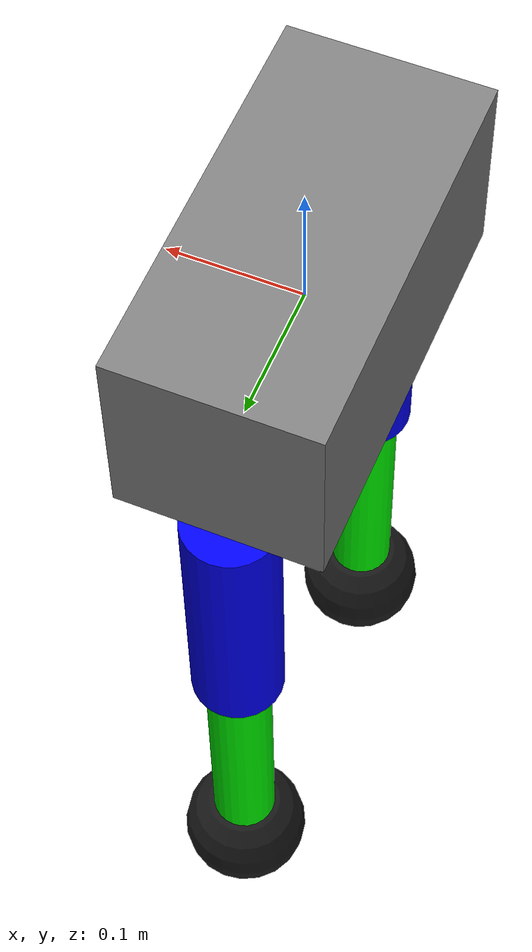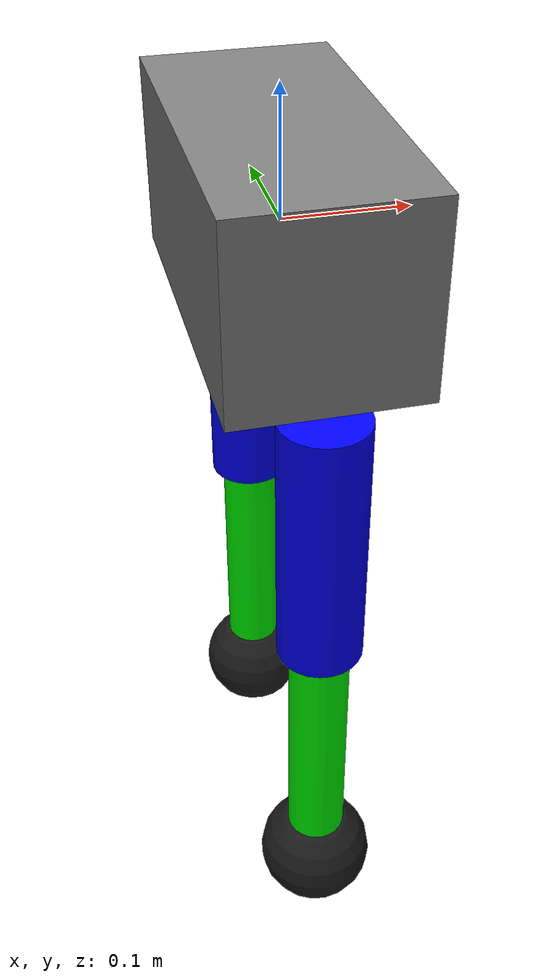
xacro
<?xml version="1.0"?>
<robot xmlns:xacro="http://www.ros.org/wiki/xacro" name="biped">

  <!-- Torso Link -->
  <link name="torso_link">
    <visual>
      <geometry>
        <box size="0.15 0.3 0.15"/>
      </geometry>
      <material name="grey">
        <color rgba="0.5 0.5 0.5 1.0"/>
      </material>
    </visual>
    <collision>
      <geometry>
        <box size="0.15 0.3 0.13"/>
      </geometry>
    </collision>
    <inertial>
      <mass value="34.9"/>
      <origin xyz="0 0 0" rpy="0 0 0"/>
      <inertia ixx="0.327" iyy="0.131" izz="0.327" ixy="0.0" ixz="0.0" iyz="0.0"/>
    </inertial>
  </link>

  <gazebo reference="torso_link">
    <sensor type="imu" name="imu_sensor">
      <always_on>true</always_on>
      <update_rate>100.0</update_rate>
      <imu>
        <topic>imu/data</topic>
        <gaussian_noise>0.01</gaussian_noise>
      </imu>
    </sensor>
  </gazebo>

  <!-- Left Hip Joint -->
  <joint name="left_hip_roll_joint" type="revolute">
    <parent link="torso_link"/>
    <child link ="left_hip_link"/>
    <origin xyz="0.0 0.13 -0.09" rpy="0 0 0"/> <!-- Proper joint position -->
    <axis xyz="1 0 0"/> <!-- Roll axis -->
    <limit lower="-1.57" upper="1.57" effort="10.0" velocity="2.0"/>
  </joint>

  <!-- Left Hip Transmission -->
  <transmission name="left_hip_trans">
    <type>transmission_interface/SimpleTransmission</type>
    <joint name="left_hip_roll_joint">
      <hardwareInterface>position</hardwareInterface>
    </joint>
    <actuator name="left_hip_motor">
      <hardwareInterface>position</hardwareInterface>
      <mechanicalReduction>1</mechanicalReduction>
    </actuator>
  </transmission>

  <!-- Left Hip Link -->
  <link name="left_hip_link">
    <visual>
      <geometry>
        <cylinder radius="0.035" length="0.22"/>
      </geometry>
      <origin xyz="0 0 -0.11" rpy="0 0 0"/>
      <material name="blue">
        <color rgba="0.0 0.0 1.0 1.0"/>
      </material>
    </visual>
    <collision>
      <geometry>
        <cylinder radius="0.035" length="0.22"/>
      </geometry>
      <origin xyz="0 0 -0.11" rpy="0 0 0"/>
    </collision>
    <inertial>
      <mass value="5.58"/>
      <origin xyz="0 0 -0.11" rpy="0 0 0"/>
      <inertia ixx="0.0242" iyy="0.0242" izz="0.00342" ixy="0.0" ixz="0.0" iyz="0.0"/>
    </inertial>
  </link>

  <!-- Left Knee Joint -->
  <joint name="left_knee_joint" type="revolute">
    <parent link="left_hip_link"/>
    <child link="left_shin_link"/>
    <origin xyz="0 0 -0.2" rpy="0 0 0"/> <!-- placed at bottom of hip link -->
    <axis xyz="0 1 0"/> <!-- flexion/extension axis -->
    <limit lower="-1.57" upper="0" effort="10.0" velocity="2.0"/>
  </joint>

  <!-- Left Knee Transmission -->
  <transmission name="left_knee_trans">
    <type>transmission_interface/SimpleTransmission</type>
    <joint name="left_knee_joint">
      <hardwareInterface>position</hardwareInterface>
    </joint>
    <actuator name="left_knee_motor">
      <hardwareInterface>position</hardwareInterface>
      <mechanicalReduction>1</mechanicalReduction>
    </actuator>
  </transmission>

  <!-- Left Shin Link-->
  <link name="left_shin_link">
    <visual>
      <geometry>
        <cylinder radius="0.025" length="0.28"/>
      </geometry>
      <origin xyz="0 0 -0.14" rpy="0 0 0"/>
      <material name="green">
        <color rgba="0.0 1.0 0.0 1.0"/>
      </material>
    </visual>
    <collision>
      <geometry>
        <cylinder radius="0.04" length="0.2"/>
      </geometry>
      <origin xyz="0 0 -0.1" rpy="0 0 0"/>
    </collision>
    <inertial>
      <mass value="4.19"/>
      <origin xyz="0 0 -0.1" rpy="0 0 0"/>
      <inertia ixx="0.0280" iyy="0.0280" izz="0.00131" ixy="0.0" ixz="0.0" iyz="0.0"/>
    </inertial>
  </link>

  <!-- Left ankle joint -->
  <joint name="left_ankle_joint" type="revolute">
    <parent link="left_shin_link"/>
    <child link="left_foot_link"/>
    <origin xyz="0 0 -0.28" rpy="0 0 0"/>
    <axis xyz="1 0 0"/><!-- Pitch axis -->
    <limit lower="-0.5" upper="0.5" effort="5.0" velocity="1.0"/>
  </joint>

  <!-- Left ankle Transmission -->
  <transmission name="left_ankle_trans">
    <type>transmission_interface/SimpleTransmission</type>
    <joint name="left_ankle_joint">
      <hardwareInterface>position</hardwareInterface>
    </joint>
    <actuator name="left_ankle_motor">
      <hardwareInterface>position</hardwareInterface>
      <mechanicalReduction>1</mechanicalReduction>
    </actuator>
  </transmission>

  <!-- Force/Torue Sensor -->
  <gazebo reference="left_ankle_joint">
    <sensor type="force_torque" name="left_ankle_ft">
      <always_on>true</always_on>
      <update_rate>100.0</update_rate>
      <force_torque>
        <frame>child</frame>
        <measure_direction>parent_to_child</measure_direction>
      </force_torque>
    </sensor>
  </gazebo>

  <!-- Left Foot Link -->
  <link name="left_foot_link">
    <visual>
      <origin xyz="0 0 0" rpy="0 0 0"/>
      <geometry>
        <sphere radius="0.05"/><!-- Rounded toe shape -->
      </geometry>
      <material name="black">
        <color rgba="0.1 0.1 0.1 1.0"/>
      </material>
    </visual>
    <collision>
      <geometry>
        <sphere radius="0.05"/>
      </geometry>
    </collision>
    <inertial>
      <mass value="2.79"/>
      <origin xyz="0 0 0" rpy="0 0 0"/>
      <inertia ixx="0.00279" iyy="0.00279" izz="0.00279" ixy="0.0" ixz="0.0" iyz="0.0"/>
    </inertial>
  </link>

  <!-- Right Hip Joint -->
  <joint name="right_hip_roll_joint" type="revolute">
    <parent link="torso_link"/>
    <child link ="right_hip_link"/>
    <origin xyz="0.0 -0.13 -0.09" rpy="0 0 0"/> <!-- Proper joint position -->
    <axis xyz="1 0 0"/> <!-- Roll axis -->
    <limit lower="-1.57" upper="1.57" effort="10.0" velocity="2.0"/>
  </joint>

  <!-- Right Hip Transmission -->
  <transmission name="right_hip_trans">
    <type>transmission_interface/SimpleTransmission</type>
    <joint name="right_hip_roll_joint">
      <hardwareInterface>position</hardwareInterface>
    </joint>
    <actuator name="right_hip_motor">
      <hardwareInterface>position</hardwareInterface>
      <mechanicalReduction>1</mechanicalReduction>
    </actuator>
  </transmission>

  <!-- Right Hip Link -->
  <link name="right_hip_link">
    <visual>
      <geometry>
        <cylinder radius="0.035" length="0.22"/>
      </geometry>
      <origin xyz="0 0 -0.11" rpy="0 0 0"/>
      <material name="blue">
        <color rgba="0.0 0.0 1.0 1.0"/>
      </material>
    </visual>
    <collision>
      <geometry>
        <cylinder radius="0.035" length="0.22"/>
      </geometry>
      <origin xyz="0 0 -0.11" rpy="0 0 0"/>
    </collision>
    <inertial>
      <mass value="5.58"/>
      <origin xyz="0 0 -0.11" rpy="0 0 0"/>
      <inertia ixx="0.0236" iyy="0.0236" izz="0.0034" ixy="0.0" ixz="0.0" iyz="0.0"/>
    </inertial>
  </link>

  <!-- Right Knee Joint -->
  <joint name="right_knee_joint" type="revolute">
    <parent link="right_hip_link"/>
    <child link="right_shin_link"/>
    <origin xyz="0 0 -0.2" rpy="0 0 0"/> <!-- placed at bottom of hip link -->
    <axis xyz="0 1 0"/> <!-- flexion/extension axis -->
    <limit lower="-1.57" upper="0" effort="10.0" velocity="2.0"/>
  </joint>

  <!-- Right Knee Transmission -->
  <transmission name="right_knee_trans">
    <type>transmission_interface/SimpleTransmission</type>
    <joint name="right_knee_joint">
      <hardwareInterface>position</hardwareInterface>
    </joint>
    <actuator name="right_knee_motor">
      <hardwareInterface>position</hardwareInterface>
      <mechanicalReduction>1</mechanicalReduction>
    </actuator>
  </transmission>

  <!-- Right Shin Link-->
  <link name="right_shin_link">
    <visual>
      <geometry>
        <cylinder radius="0.025" length="0.28"/>
      </geometry>
      <origin xyz="0 0 -0.1" rpy="0 0 0"/>
      <material name="green">
        <color rgba="0.0 1.0 0.0 1.0"/>
      </material>
    </visual>
    <collision>
      <geometry>
        <cylinder radius="0.025" length="0.28"/>
      </geometry>
      <origin xyz="0 0 -0.1" rpy="0 0 0"/>
    </collision>
    <inertial>
      <mass value="4.19"/>
      <origin xyz="0 0 -0.1" rpy="0 0 0"/>
      <inertia ixx="0.0280" iyy="0.0280" izz="0.00066" ixy="0.0" ixz="0.0" iyz="0.0"/>
    </inertial>
  </link>

  <!-- Right ankle joint -->
  <joint name="right_ankle_joint" type="revolute">
    <parent link="right_shin_link"/>
    <child link="right_foot_link"/>
    <origin xyz="0 0 -0.28" rpy="0 0 0"/>
    <axis xyz="1 0 0"/><!-- Pitch axis -->
    <limit lower="-0.5" upper="0.5" effort="5.0" velocity="1.0"/>
  </joint>

  <!-- Right ankle Transmission -->
  <transmission name="right_ankle_trans">
    <type>transmission_interface/SimpleTransmission</type>
    <joint name="right_ankle_joint">
      <hardwareInterface>position</hardwareInterface>
    </joint>
    <actuator name="right_ankle_motor">
      <hardwareInterface>position</hardwareInterface>
      <mechanicalReduction>1</mechanicalReduction>
    </actuator>
  </transmission>

  <!-- Force/Torue Sensor -->
  <gazebo reference="right_ankle_joint">
    <sensor type="force_torque" name="right_ankle_ft">
      <always_on>true</always_on>
      <update_rate>100.0</update_rate>
      <force_torque>
        <frame>child</frame>
        <measure_direction>parent_to_child</measure_direction>
      </force_torque>
    </sensor>
  </gazebo>

  <!-- Right Foot Link -->
  <link name="right_foot_link">
    <visual>
      <origin xyz="0 0 0" rpy="0 0 0"/>
      <geometry>
        <sphere radius="0.05"/><!-- Rounded toe shape -->
      </geometry>
      <material name="black">
        <color rgba="0.1 0.1 0.1 1.0"/>
      </material>
    </visual>
    <collision>
      <geometry>
        <sphere radius="0.05"/>
      </geometry>
    </collision>
    <inertial>
      <mass value="2.79"/>
      <origin xyz="0 0 0" rpy="0 0 0"/>
      <inertia ixx="0.00279" iyy="0.00279" izz="0.00279" ixy="0.0" ixz="0.0" iyz="0.0"/>
    </inertial>
  </link>

  <!-- ros2_control hardware interface configuration -->
  <ros2_control name="BipedSystem" type="system">

    <hardware>
      <plugin>gazebo_ros2_control/GazeboSystem</plugin>
    </hardware>

    <joint name="left_hip_roll_joint">
      <command_interface name="position"/>
      <state_interface name="position"/>
      <state_interface name="velocity"/>
    </joint>
    <joint name="left_knee_joint">
      <command_interface name="position"/>
      <state_interface name="position"/>
      <state_interface name="velocity"/>
    </joint>
    <joint name="left_ankle_joint">
      <command_interface name="position"/>
      <state_interface name="position"/>
      <state_interface name="velocity"/>
    </joint>
    <joint name="right_hip_roll_joint">
      <command_interface name="position"/>
      <state_interface name="position"/>
      <state_interface name="velocity"/>
    </joint>
    <joint name="right_knee_joint">
      <command_interface name="position"/>
      <state_interface name="position"/>
      <state_interface name="velocity"/>
    </joint>
    <joint name="right_ankle_joint">
      <command_interface name="position"/>
      <state_interface name="position"/>
      <state_interface name="velocity"/>
    </joint>
  </ros2_control>

  <gazebo>
    <plugin name="gazebo_ros2_control" filename="libgazebo_ros2_control.so">
      <robot_namespace>/</robot_namespace>
      <parameters>/home/yogesh_rajesh/biped_ros2_ws/src/biped_description/config/biped_controllers.yaml</parameters>
    </plugin>
  </gazebo>

</robot>
